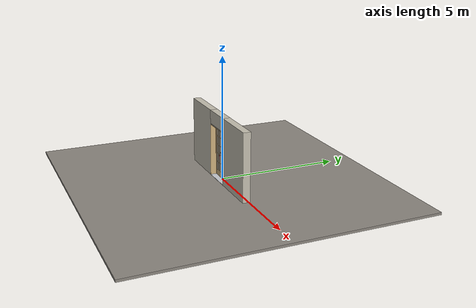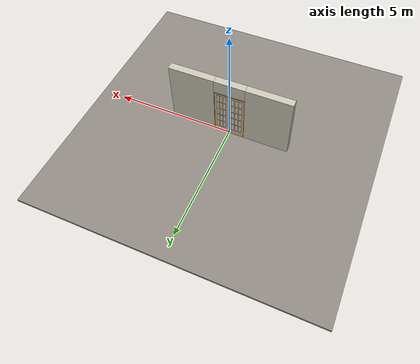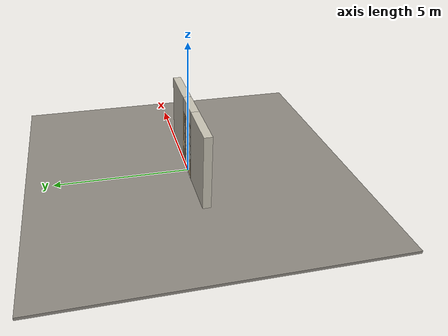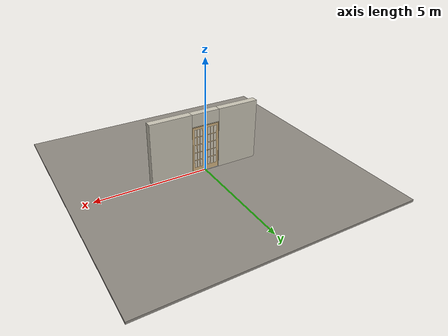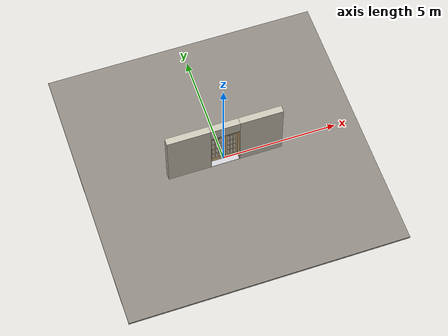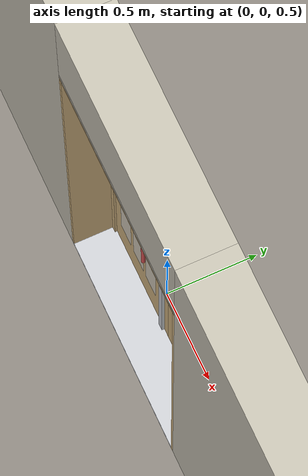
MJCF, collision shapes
<?xml version="1.0" ?>
<mujoco model="db0702_swing_double_full">
  <compiler angle="radian" meshdir="../../hardware" texturedir="../../textures" autolimits="true" inertiafromgeom="false"/>
  <option timestep="0.002" integrator="implicitfast" cone="elliptic" impratio="10" noslip_iterations="3">
    <flag multiccd="enable"/>
  </option>
  <size memory="16M"/>
  <default>
    <geom condim="4" solref="0.005 1" solimp="0.95 0.99 0.001"/>
    <joint solreflimit="0.005 1" solimplimit="0.95 0.99 0.001"/>
    <tendon solreflimit="0.005 1"/>
    <equality solref="0.002 1"/>
  </default>
  <visual>
    <headlight ambient="0.4 0.4 0.4" diffuse="0.7 0.7 0.7" specular="0.2 0.2 0.2"/>
    <quality shadowsize="4096"/>
    <map znear="0.01" zfar="60"/>
  </visual>
  <asset>
    <mesh name="cyl_face_e9e5036966" file="cyl_face_e9e5036966.obj"/>
    <mesh name="handleset_beb5526ad2" file="handleset_beb5526ad2.obj"/>
    <mesh name="hinge_2af0f4d6ca" file="hinge_2af0f4d6ca.obj"/>
    <mesh name="hinge_jamb_c0c0a62ada" file="hinge_jamb_c0c0a62ada.obj"/>
    <mesh name="knob_d1888f6f03" file="knob_d1888f6f03.obj"/>
    <material name="mat_floor" rgba="0.55 0.53 0.5 1" specular="0.2" shininess="0.15" reflectance="0"/>
    <material name="mat_wall" rgba="0.78 0.76 0.7 1" specular="0.2" shininess="0.1" reflectance="0"/>
    <material name="mat_leaf_a" rgba="0.82 0.7 0.5 1" specular="0.2" shininess="0.45" reflectance="0"/>
    <material name="mat_glass" rgba="0.9 0.93 0.95 0.6" specular="0.2" shininess="0.5" reflectance="0.1"/>
    <material name="mat_hinge" rgba="0.65 0.66 0.68 1" specular="0.74" shininess="0.5" reflectance="0.36"/>
    <material name="mat_op_bronze" rgba="0.3 0.22 0.15 1" specular="0.74" shininess="0.5" reflectance="0.36"/>
    <material name="mat_op_brass" rgba="0.85 0.66 0.3 1" specular="0.8" shininess="0.75" reflectance="0.4"/>
    <material name="mat_trim" rgba="0.85 0.66 0.3 1" specular="0.8" shininess="0.75" reflectance="0.4"/>
    <material name="mat_bolt" rgba="0.85 0.66 0.3 1" specular="0.8" shininess="0.75" reflectance="0.4"/>
    <material name="mat_deadbolt" rgba="0.85 0.66 0.3 1" specular="0.8" shininess="0.75" reflectance="0.4"/>
    <material name="mat_leaf_b" rgba="0.82 0.7 0.5 1" specular="0.2" shininess="0.45" reflectance="0"/>
    <material name="mat_frame" rgba="0.82 0.7 0.5 1" specular="0.2" shininess="0.45" reflectance="0"/>
    <material name="mat_threshold" rgba="0.8 0.81 0.83 1" specular="0.8" shininess="0.6" reflectance="0.4"/>
    <material name="mat_astragal" rgba="0.8 0.81 0.83 1" specular="0.8" shininess="0.6" reflectance="0.4"/>
    <texture name="skybox" type="skybox" builtin="gradient" rgb1="0.6 0.7 0.85" rgb2="0.9 0.92 0.95" width="256" height="256"/>
  </asset>
  <worldbody>
    <light name="sun" pos="1.5 -2.5 4" dir="-0.3 0.5 -0.8" directional="true" diffuse="0.8 0.8 0.8" specular="0.3 0.3 0.3" castshadow="true"/>
    <light name="fill" pos="-1.5 2.5 3" dir="0.3 -0.5 -0.7" directional="true" diffuse="0.35 0.35 0.4" castshadow="false"/>
    <camera name="robot_view" pos="0 -2.745812 1.812087" xyaxes="1 0 0 0 0.26963 0.962964" fovy="52"/>
    <camera name="far_view" pos="0 2.529812 1.812087" xyaxes="-1 0 0 0 -0.26963 0.962964" fovy="52"/>
    <camera name="iso" pos="-2.004737 -2.323762 2.234138" xyaxes="0.741536 -0.670913 0 0.242917 0.268487 0.932151" fovy="46"/>
    <camera name="detail_handle" pos="0.0735 -0.882 1.185" xyaxes="0.97561 0.219512 0 -0.070934 0.315262 0.94635" fovy="38"/>
    <geom name="floor" type="box" size="6 6 0.05" pos="0 0 -0.05" material="mat_floor" group="0" contype="1" conaffinity="1" friction="0.8 0.005 0.0001" density="2400"/>
    <geom name="wall_left" type="box" size="0.93325 0.15 1.3735" pos="-1.56675 -0.108 1.3735" material="mat_wall" group="0" contype="1" conaffinity="1" friction="0.6 0.005 0.0001" density="800"/>
    <geom name="wall_right" type="box" size="0.93325 0.15 1.3735" pos="1.56675 -0.108 1.3735" material="mat_wall" group="0" contype="1" conaffinity="1" friction="0.6 0.005 0.0001" density="800"/>
    <geom name="wall_header" type="box" size="0.6335 0.15 0.2755" pos="0 -0.108 2.4715" material="mat_wall" group="0" contype="1" conaffinity="1" friction="0.6 0.005 0.0001" density="800"/>
    <geom name="hinge_0_jamb" type="mesh" mesh="hinge_jamb_c0c0a62ada" pos="-0.6115 0.029 0.267" quat="0 1 0 0" material="mat_hinge" group="1" contype="0" conaffinity="0" density="7850"/>
    <geom name="hinge_1_jamb" type="mesh" mesh="hinge_jamb_c0c0a62ada" pos="-0.6115 0.029 1.08" quat="0 1 0 0" material="mat_hinge" group="1" contype="0" conaffinity="0" density="7850"/>
    <geom name="hinge_2_jamb" type="mesh" mesh="hinge_jamb_c0c0a62ada" pos="-0.6115 0.029 1.963" quat="0 1 0 0" material="mat_hinge" group="1" contype="0" conaffinity="0" density="7850"/>
    <geom name="hinge_0_jamb_2" type="mesh" mesh="hinge_jamb_c0c0a62ada" pos="0.6115 0.029 0.267" quat="0 0 0 1" material="mat_hinge" group="1" contype="0" conaffinity="0" density="7850"/>
    <geom name="hinge_1_jamb_2" type="mesh" mesh="hinge_jamb_c0c0a62ada" pos="0.6115 0.029 1.08" quat="0 0 0 1" material="mat_hinge" group="1" contype="0" conaffinity="0" density="7850"/>
    <geom name="hinge_2_jamb_2" type="mesh" mesh="hinge_jamb_c0c0a62ada" pos="0.6115 0.029 1.963" quat="0 0 0 1" material="mat_hinge" group="1" contype="0" conaffinity="0" density="7850"/>
    <geom name="jamb_l" type="box" size="0.0095 0.15 1.0735" pos="-0.624 -0.108 1.0735" material="mat_frame" group="0" contype="1" conaffinity="1" friction="0.6 0.005 0.0001" density="300"/>
    <geom name="jamb_r" type="box" size="0.0095 0.15 1.0735" pos="0.624 -0.108 1.0735" material="mat_frame" group="0" contype="1" conaffinity="1" friction="0.6 0.005 0.0001" density="300"/>
    <geom name="jamb_head" type="box" size="0.6335 0.15 0.0095" pos="0 -0.108 2.1565" material="mat_frame" group="0" contype="1" conaffinity="1" friction="0.6 0.005 0.0001" density="300"/>
    <geom name="head_stud" type="box" size="0.6335 0.15 0.015" pos="0 -0.108 2.181" material="mat_wall" group="0" contype="1" conaffinity="1" friction="0.6 0.005 0.0001" density="500"/>
    <geom name="stop_l" type="box" size="0.015 0.006 1.0735" pos="-0.5995 -0.0285 1.0735" material="mat_frame" group="0" contype="1" conaffinity="1" friction="0.6 0.005 0.0001" density="300"/>
    <geom name="stop_r" type="box" size="0.015 0.006 1.0735" pos="0.5995 -0.0285 1.0735" material="mat_frame" group="0" contype="1" conaffinity="1" friction="0.6 0.005 0.0001" density="300"/>
    <geom name="stop_head" type="box" size="0.6145 0.006 0.015" pos="0 -0.0285 2.132" material="mat_frame" group="0" contype="1" conaffinity="1" friction="0.6 0.005 0.0001" density="300"/>
    <geom name="threshold" type="box" size="0.6335 0.15 0.0065" pos="0 -0.108 0.0065" material="mat_threshold" group="0" contype="1" conaffinity="1" friction="0.5 0.005 0.0001" density="2700"/>
    <site name="approach_point" pos="0 -1.5 0" quat="1 0 0 0" size="0.05" rgba="0.2 0.9 0.2 0.5" group="4"/>
    <site name="goal_point" pos="0 1.5 0" quat="1 0 0 0" size="0.05" rgba="0.2 0.9 0.2 0.5" group="4"/>
    <site name="door_plane_center" pos="0 0 1.0735" quat="1 0 0 0" size="0.02" rgba="0.2 0.9 0.2 0.5" group="4"/>
    <site name="approach_point_2" pos="0 -1.5 0" quat="1 0 0 0" size="0.05" rgba="0.2 0.9 0.2 0.5" group="4"/>
    <site name="goal_point_2" pos="0 1.5 0" quat="1 0 0 0" size="0.05" rgba="0.2 0.9 0.2 0.5" group="4"/>
    <site name="door_plane_center_2" pos="0 0 1.0735" quat="1 0 0 0" size="0.02" rgba="0.2 0.9 0.2 0.5" group="4"/>
    <site name="approach_point_3" pos="0 -1.5 0" quat="1 0 0 0" size="0.05" rgba="0.2 0.9 0.2 0.5" group="4"/>
    <site name="goal_point_3" pos="0 1.5 0" quat="1 0 0 0" size="0.05" rgba="0.2 0.9 0.2 0.5" group="4"/>
    <site name="door_plane_center_3" pos="0 0 1.0735" quat="1 0 0 0" size="0.02" rgba="0.2 0.9 0.2 0.5" group="4"/>
    <body name="leaf_a" pos="-0.6145 0 0">
      <inertial pos="0.321329 -0.003282 1.068916" mass="23.587514" quat="0.504683 0.491321 -0.507793 0.49603" diaginertia="0.839727097 8.301690874 9.124581963"/>
      <joint name="leaf_a_hinge" type="hinge" axis="0 0 1" pos="0.003 0.029 0" limited="true" range="0 1.570796" solreflimit="0.02 1" damping="0.103362" frictionloss="0.764321" armature="0.02"/>
      <geom name="leaf_a_slab" type="box" size="0.305 0.022 1.063" pos="0.308 0 1.08" material="mat_leaf_a" group="0" contype="1" conaffinity="1" friction="0.35 0.005 0.0001" density="1"/>
      <geom name="leaf_a_glass_0" type="box" size="0.061667 0.0228 0.166584" pos="0.154667 0 0.417444" material="mat_glass" group="1" contype="0" conaffinity="0" density="1"/>
      <geom name="leaf_a_glass_1" type="box" size="0.061667 0.0228 0.166584" pos="0.308 0 0.417444" material="mat_glass" group="1" contype="0" conaffinity="0" density="1"/>
      <geom name="leaf_a_glass_2" type="box" size="0.061667 0.0228 0.166584" pos="0.461333 0 0.417444" material="mat_glass" group="1" contype="0" conaffinity="0" density="1"/>
      <geom name="leaf_a_glass_3" type="box" size="0.061667 0.0228 0.166584" pos="0.154667 0 0.780612" material="mat_glass" group="1" contype="0" conaffinity="0" density="1"/>
      <geom name="leaf_a_glass_4" type="box" size="0.061667 0.0228 0.166584" pos="0.308 0 0.780612" material="mat_glass" group="1" contype="0" conaffinity="0" density="1"/>
      <geom name="leaf_a_glass_5" type="box" size="0.061667 0.0228 0.166584" pos="0.461333 0 0.780612" material="mat_glass" group="1" contype="0" conaffinity="0" density="1"/>
      <geom name="leaf_a_glass_6" type="box" size="0.061667 0.0228 0.166584" pos="0.154667 0 1.14378" material="mat_glass" group="1" contype="0" conaffinity="0" density="1"/>
      <geom name="leaf_a_glass_7" type="box" size="0.061667 0.0228 0.166584" pos="0.308 0 1.14378" material="mat_glass" group="1" contype="0" conaffinity="0" density="1"/>
      <geom name="leaf_a_glass_8" type="box" size="0.061667 0.0228 0.166584" pos="0.461333 0 1.14378" material="mat_glass" group="1" contype="0" conaffinity="0" density="1"/>
      <geom name="leaf_a_glass_9" type="box" size="0.061667 0.0228 0.166584" pos="0.154667 0 1.506948" material="mat_glass" group="1" contype="0" conaffinity="0" density="1"/>
      <geom name="leaf_a_glass_10" type="box" size="0.061667 0.0228 0.166584" pos="0.308 0 1.506948" material="mat_glass" group="1" contype="0" conaffinity="0" density="1"/>
      <geom name="leaf_a_glass_11" type="box" size="0.061667 0.0228 0.166584" pos="0.461333 0 1.506948" material="mat_glass" group="1" contype="0" conaffinity="0" density="1"/>
      <geom name="leaf_a_glass_12" type="box" size="0.061667 0.0228 0.166584" pos="0.154667 0 1.870116" material="mat_glass" group="1" contype="0" conaffinity="0" density="1"/>
      <geom name="leaf_a_glass_13" type="box" size="0.061667 0.0228 0.166584" pos="0.308 0 1.870116" material="mat_glass" group="1" contype="0" conaffinity="0" density="1"/>
      <geom name="leaf_a_glass_14" type="box" size="0.061667 0.0228 0.166584" pos="0.461333 0 1.870116" material="mat_glass" group="1" contype="0" conaffinity="0" density="1"/>
      <geom name="hinge_0" type="mesh" mesh="hinge_2af0f4d6ca" pos="0.003 0.029 0.267" quat="0 1 0 0" material="mat_hinge" group="1" contype="0" conaffinity="0" density="7850"/>
      <geom name="hinge_1" type="mesh" mesh="hinge_2af0f4d6ca" pos="0.003 0.029 1.08" quat="0 1 0 0" material="mat_hinge" group="1" contype="0" conaffinity="0" density="7850"/>
      <geom name="hinge_2" type="mesh" mesh="hinge_2af0f4d6ca" pos="0.003 0.029 1.963" quat="0 1 0 0" material="mat_hinge" group="1" contype="0" conaffinity="0" density="7850"/>
      <geom name="leaf_a_handleset_n" type="mesh" mesh="handleset_beb5526ad2" pos="0.508 -0.022 0.905" quat="0.707107 0.707107 0 0" material="mat_op_bronze" group="1" contype="0" conaffinity="0" density="3000"/>
      <geom name="leaf_a_handleset_col_n" type="capsule" size="0.011 0.09" pos="0.508 -0.082 0.905" material="mat_op_bronze" group="3" contype="1" conaffinity="1" rgba="0.8 0.3 0.3 0.25" friction="0.7 0.01 0.0001" density="3000"/>
      <geom name="leaf_a_latch_bolt_faceplate" type="box" size="0.0006 0.01235 0.0267" pos="0.6124 0 0.965" material="mat_bolt" group="1" contype="0" conaffinity="0" density="8500"/>
      <geom name="leaf_a_deadbolt_faceplate" type="box" size="0.0006 0.014 0.0245" pos="0.6124 0 1.14" material="mat_deadbolt" group="1" contype="0" conaffinity="0" density="8500"/>
      <geom name="leaf_a_deadbolt_cylinder_face" type="mesh" mesh="cyl_face_e9e5036966" pos="0.548 -0.022 1.14" quat="0.707107 0.707107 0 0" material="mat_deadbolt" group="1" contype="0" conaffinity="0" density="7100"/>
      <geom name="leaf_a_multipoint_upper_faceplate" type="box" size="0.0006 0.014 0.0245" pos="0.6124 0 1.64" material="mat_deadbolt" group="1" contype="0" conaffinity="0" density="8500"/>
      <geom name="leaf_a_multipoint_lower_faceplate" type="box" size="0.0006 0.014 0.0245" pos="0.6124 0 0.59" material="mat_deadbolt" group="1" contype="0" conaffinity="0" density="8500"/>
      <geom name="leaf_a_multipoint_strip" type="box" size="0.0004 0.01 1.043" pos="0.6126 0 1.08" material="mat_deadbolt" group="1" contype="0" conaffinity="0" density="8500"/>
      <site name="leaf_a_handleset_grip_n" pos="0.508 -0.082 0.905" quat="1 0 0 0" size="0.012" rgba="0.2 0.9 0.2 0.5" group="4"/>
      <site name="leaf_a_edge_mid" pos="0.613 0 1.063" quat="1 0 0 0" size="0.02" rgba="0.2 0.9 0.2 0.5" group="4"/>
      <body name="leaf_a_handle" pos="0.543 0 0.965">
        <inertial pos="0 0.052948 0" mass="0.60261" quat="0.5 0.5 0.5 0.5" diaginertia="0.000156736 0.000451151 0.000451151"/>
        <joint name="leaf_a_handle_hinge" type="hinge" axis="0 -1 0" limited="true" range="0 0.03" damping="0.142525" frictionloss="0.038" stiffness="0.5" springref="-0.5" armature="0.01"/>
        <geom name="leaf_a_handle_spindle" type="cylinder" size="0.006 0.03" pos="0 0 0" quat="0.707107 -0.707107 0 0" material="mat_op_brass" group="1" contype="0" conaffinity="0" density="7850"/>
        <geom name="leaf_a_handle_knob_p" type="mesh" mesh="knob_d1888f6f03" pos="0 0.022 0" quat="-0.707107 0.707107 0 0" material="mat_op_brass" group="1" contype="0" conaffinity="0" density="3000"/>
        <geom name="leaf_a_handle_knob_col_p" type="sphere" size="0.0243" pos="0 0.0685 0" material="mat_op_brass" group="0" contype="1" conaffinity="1" friction="0.9 0.01 0.0001" density="3000"/>
        <geom name="leaf_a_handle_knob_neck_p" type="cylinder" size="0.011 0.012" pos="0 0.034 0" quat="0.707107 -0.707107 0 0" material="mat_op_brass" group="3" contype="1" conaffinity="1" rgba="0.8 0.3 0.3 0.25" friction="0.6 0.005 0.0001" density="3000"/>
        <site name="leaf_a_handle_grip_p" pos="0 0.0685 0" quat="1 0 0 0" size="0.012" rgba="0.2 0.9 0.2 0.5" group="4"/>
      </body>
      <body name="leaf_a_thumbpiece" pos="0.508 -0.04 1.077">
        <inertial pos="0 0.004 0" mass="0.05184" quat="-0.5 0.5 0.5 0.5" diaginertia="0.000006981 0.000007488 0.000009124"/>
        <joint name="leaf_a_thumbpiece_hinge" type="hinge" axis="-1 0 0" pos="0 0 0.02" limited="true" range="0 0.35" damping="0.219407" frictionloss="0.058" stiffness="1.2" springref="-0.416667" armature="0.01"/>
        <geom name="leaf_a_thumbpiece_geom" type="box" size="0.018 0.004 0.02" pos="0 0 0" material="mat_op_bronze" group="0" contype="1" conaffinity="1" friction="0.6 0.005 0.0001" density="3000"/>
        <geom name="leaf_a_thumbpiece_boss" type="box" size="0.01 0.012 0.006" pos="0 0.012 0" material="mat_op_bronze" group="1" contype="0" conaffinity="0" density="3000"/>
        <site name="leaf_a_thumb_push" pos="0 -0.005 0.01" quat="1 0 0 0" size="0.01" rgba="0.2 0.9 0.2 0.5" group="4"/>
      </body>
      <body name="leaf_a_latch_bolt" pos="0.613 0 0.965">
        <inertial pos="-0.00865 0 0" mass="0.041419" quat="0.92388 -0.382683 0 0" diaginertia="0.000000798 0.000005598 0.000005598"/>
        <joint name="leaf_a_latch_bolt_slide" type="slide" axis="-1 0 0" limited="true" range="0 0.0127" damping="2" frictionloss="0.3" stiffness="300" springref="-0.008333" armature="0.1"/>
        <geom name="leaf_a_latch_bolt_capsule" type="capsule" size="0.00635 0.015" pos="-0.00865 0 0" quat="0.707107 0 0.707107 0" material="mat_bolt" group="0" contype="1" conaffinity="1" friction="0.2 0.005 0.0001" density="8500"/>
      </body>
      <body name="leaf_a_deadbolt" pos="0.613 0 1.14">
        <inertial pos="-0.005 0 0" mass="0.17" quat="0 0 0.707107 0.707107" diaginertia="0.000012481 0.000039043 0.000044271"/>
        <geom name="leaf_a_deadbolt_box" type="box" size="0.025 0.008 0.0125" pos="-0.005 0 0" material="mat_deadbolt" group="0" contype="1" conaffinity="1" friction="0.3 0.005 0.0001" density="8500"/>
      </body>
      <body name="leaf_a_multipoint_upper" pos="0.613 0 1.64">
        <inertial pos="-0.005 0 0" mass="0.17" quat="0 0 0.707107 0.707107" diaginertia="0.000012481 0.000039043 0.000044271"/>
        <geom name="leaf_a_multipoint_upper_box" type="box" size="0.025 0.008 0.0125" pos="-0.005 0 0" material="mat_deadbolt" group="0" contype="1" conaffinity="1" friction="0.3 0.005 0.0001" density="8500"/>
      </body>
      <body name="leaf_a_multipoint_lower" pos="0.613 0 0.59">
        <inertial pos="-0.005 0 0" mass="0.17" quat="0 0 0.707107 0.707107" diaginertia="0.000012481 0.000039043 0.000044271"/>
        <geom name="leaf_a_multipoint_lower_box" type="box" size="0.025 0.008 0.0125" pos="-0.005 0 0" material="mat_deadbolt" group="0" contype="1" conaffinity="1" friction="0.3 0.005 0.0001" density="8500"/>
      </body>
    </body>
    <body name="leaf_b" pos="0.6145 0 0">
      <inertial pos="-0.346254 -0.006286 1.077845" mass="22.599859" quat="0.488916 0.512342 -0.487297 0.51089" diaginertia="0.959766359 8.525058372 9.475381376"/>
      <joint name="leaf_b_hinge" type="hinge" axis="0 0 -1" pos="-0.003 0.029 0" limited="true" range="0 0.001" solreflimit="0.02 1" damping="0.103362" frictionloss="0.764321" armature="0.02"/>
      <geom name="leaf_b_edge_590_wall_n" type="box" size="0.03 0.00625 0.0155" pos="-0.583 -0.01575 0.59" material="mat_leaf_b" group="0" contype="1" conaffinity="1" friction="0.6 0.005 0.0001" density="1"/>
      <geom name="leaf_b_edge_590_wall_p" type="box" size="0.03 0.00625 0.0155" pos="-0.583 0.01575 0.59" material="mat_leaf_b" group="0" contype="1" conaffinity="1" friction="0.6 0.005 0.0001" density="1"/>
      <geom name="leaf_b_edge_590_back" type="box" size="0.018 0.0095 0.0155" pos="-0.571 0 0.59" material="mat_leaf_b" group="0" contype="1" conaffinity="1" friction="0.6 0.005 0.0001" density="1"/>
      <geom name="leaf_b_edge_965_wall_n" type="box" size="0.03 0.007075 0.0167" pos="-0.583 -0.014925 0.965" material="mat_leaf_b" group="0" contype="1" conaffinity="1" friction="0.6 0.005 0.0001" density="1"/>
      <geom name="leaf_b_edge_965_wall_p" type="box" size="0.03 0.008 0.0167" pos="-0.583 0.01585 0.965" material="mat_leaf_b" group="0" contype="1" conaffinity="1" friction="0.6 0.005 0.0001" density="1"/>
      <geom name="leaf_b_edge_965_ramp" type="box" size="0.03 0.01649 0.0167" pos="-0.578861 0.026388 0.965" quat="0.977148 0 0 -0.212558" material="mat_leaf_b" group="0" contype="1" conaffinity="1" friction="0.12 0.005 0.0001" density="1"/>
      <geom name="leaf_b_edge_965_back" type="box" size="0.02165 0.00785 0.0167" pos="-0.57465 0 0.965" material="mat_leaf_b" group="0" contype="1" conaffinity="1" friction="0.6 0.005 0.0001" density="1"/>
      <geom name="leaf_b_edge_1140_wall_n" type="box" size="0.03 0.00625 0.0155" pos="-0.583 -0.01575 1.14" material="mat_leaf_b" group="0" contype="1" conaffinity="1" friction="0.6 0.005 0.0001" density="1"/>
      <geom name="leaf_b_edge_1140_wall_p" type="box" size="0.03 0.00625 0.0155" pos="-0.583 0.01575 1.14" material="mat_leaf_b" group="0" contype="1" conaffinity="1" friction="0.6 0.005 0.0001" density="1"/>
      <geom name="leaf_b_edge_1140_back" type="box" size="0.018 0.0095 0.0155" pos="-0.571 0 1.14" material="mat_leaf_b" group="0" contype="1" conaffinity="1" friction="0.6 0.005 0.0001" density="1"/>
      <geom name="leaf_b_edge_1640_wall_n" type="box" size="0.03 0.00625 0.0155" pos="-0.583 -0.01575 1.64" material="mat_leaf_b" group="0" contype="1" conaffinity="1" friction="0.6 0.005 0.0001" density="1"/>
      <geom name="leaf_b_edge_1640_wall_p" type="box" size="0.03 0.00625 0.0155" pos="-0.583 0.01575 1.64" material="mat_leaf_b" group="0" contype="1" conaffinity="1" friction="0.6 0.005 0.0001" density="1"/>
      <geom name="leaf_b_edge_1640_back" type="box" size="0.018 0.0095 0.0155" pos="-0.571 0 1.64" material="mat_leaf_b" group="0" contype="1" conaffinity="1" friction="0.6 0.005 0.0001" density="1"/>
      <geom name="leaf_b_edge_seg_0" type="box" size="0.03 0.022 0.27875" pos="-0.583 0 0.29575" material="mat_leaf_b" group="0" contype="1" conaffinity="1" friction="0.6 0.005 0.0001" density="1"/>
      <geom name="leaf_b_edge_seg_1" type="box" size="0.03 0.022 0.1714" pos="-0.583 0 0.7769" material="mat_leaf_b" group="0" contype="1" conaffinity="1" friction="0.6 0.005 0.0001" density="1"/>
      <geom name="leaf_b_edge_seg_2" type="box" size="0.03 0.022 0.0714" pos="-0.583 0 1.0531" material="mat_leaf_b" group="0" contype="1" conaffinity="1" friction="0.6 0.005 0.0001" density="1"/>
      <geom name="leaf_b_edge_seg_3" type="box" size="0.03 0.022 0.2345" pos="-0.583 0 1.39" material="mat_leaf_b" group="0" contype="1" conaffinity="1" friction="0.6 0.005 0.0001" density="1"/>
      <geom name="leaf_b_edge_seg_4" type="box" size="0.03 0.022 0.24375" pos="-0.583 0 1.89925" material="mat_leaf_b" group="0" contype="1" conaffinity="1" friction="0.6 0.005 0.0001" density="1"/>
      <geom name="leaf_b_slab" type="box" size="0.275 0.022 1.063" pos="-0.278 0 1.08" material="mat_leaf_b" group="0" contype="1" conaffinity="1" friction="0.35 0.005 0.0001" density="1"/>
      <geom name="leaf_b_glass_0" type="box" size="0.051667 0.0228 0.166584" pos="-0.144667 0 0.417444" material="mat_glass" group="1" contype="0" conaffinity="0" density="1"/>
      <geom name="leaf_b_glass_1" type="box" size="0.051667 0.0228 0.166584" pos="-0.278 0 0.417444" material="mat_glass" group="1" contype="0" conaffinity="0" density="1"/>
      <geom name="leaf_b_glass_2" type="box" size="0.051667 0.0228 0.166584" pos="-0.411333 0 0.417444" material="mat_glass" group="1" contype="0" conaffinity="0" density="1"/>
      <geom name="leaf_b_glass_3" type="box" size="0.051667 0.0228 0.166584" pos="-0.144667 0 0.780612" material="mat_glass" group="1" contype="0" conaffinity="0" density="1"/>
      <geom name="leaf_b_glass_4" type="box" size="0.051667 0.0228 0.166584" pos="-0.278 0 0.780612" material="mat_glass" group="1" contype="0" conaffinity="0" density="1"/>
      <geom name="leaf_b_glass_5" type="box" size="0.051667 0.0228 0.166584" pos="-0.411333 0 0.780612" material="mat_glass" group="1" contype="0" conaffinity="0" density="1"/>
      <geom name="leaf_b_glass_6" type="box" size="0.051667 0.0228 0.166584" pos="-0.144667 0 1.14378" material="mat_glass" group="1" contype="0" conaffinity="0" density="1"/>
      <geom name="leaf_b_glass_7" type="box" size="0.051667 0.0228 0.166584" pos="-0.278 0 1.14378" material="mat_glass" group="1" contype="0" conaffinity="0" density="1"/>
      <geom name="leaf_b_glass_8" type="box" size="0.051667 0.0228 0.166584" pos="-0.411333 0 1.14378" material="mat_glass" group="1" contype="0" conaffinity="0" density="1"/>
      <geom name="leaf_b_glass_9" type="box" size="0.051667 0.0228 0.166584" pos="-0.144667 0 1.506948" material="mat_glass" group="1" contype="0" conaffinity="0" density="1"/>
      <geom name="leaf_b_glass_10" type="box" size="0.051667 0.0228 0.166584" pos="-0.278 0 1.506948" material="mat_glass" group="1" contype="0" conaffinity="0" density="1"/>
      <geom name="leaf_b_glass_11" type="box" size="0.051667 0.0228 0.166584" pos="-0.411333 0 1.506948" material="mat_glass" group="1" contype="0" conaffinity="0" density="1"/>
      <geom name="leaf_b_glass_12" type="box" size="0.051667 0.0228 0.166584" pos="-0.144667 0 1.870116" material="mat_glass" group="1" contype="0" conaffinity="0" density="1"/>
      <geom name="leaf_b_glass_13" type="box" size="0.051667 0.0228 0.166584" pos="-0.278 0 1.870116" material="mat_glass" group="1" contype="0" conaffinity="0" density="1"/>
      <geom name="leaf_b_glass_14" type="box" size="0.051667 0.0228 0.166584" pos="-0.411333 0 1.870116" material="mat_glass" group="1" contype="0" conaffinity="0" density="1"/>
      <geom name="hinge_0_2" type="mesh" mesh="hinge_2af0f4d6ca" pos="-0.003 0.029 0.267" quat="0 0 0 1" material="mat_hinge" group="1" contype="0" conaffinity="0" density="7850"/>
      <geom name="hinge_1_2" type="mesh" mesh="hinge_2af0f4d6ca" pos="-0.003 0.029 1.08" quat="0 0 0 1" material="mat_hinge" group="1" contype="0" conaffinity="0" density="7850"/>
      <geom name="hinge_2_2" type="mesh" mesh="hinge_2af0f4d6ca" pos="-0.003 0.029 1.963" quat="0 0 0 1" material="mat_hinge" group="1" contype="0" conaffinity="0" density="7850"/>
      <geom name="astragal" type="box" size="0.02 0.008 1.047" pos="-0.617 -0.03 1.067" material="mat_astragal" group="0" contype="1" conaffinity="1" friction="0.6 0.005 0.0001" density="2700"/>
      <site name="leaf_b_edge_mid" pos="-0.613 0 1.063" quat="1 0 0 0" size="0.02" rgba="0.2 0.9 0.2 0.5" group="4"/>
    </body>
  </worldbody>
  <tendon>
    <fixed name="leaf_a_thumb_coupling" limited="true" range="0 10">
      <joint joint="leaf_a_latch_bolt_slide" coef="1"/>
      <joint joint="leaf_a_thumbpiece_hinge" coef="-0.039688"/>
    </fixed>
    <fixed name="leaf_a_latch_bolt_coupling" limited="true" range="0 10">
      <joint joint="leaf_a_latch_bolt_slide" coef="1"/>
      <joint joint="leaf_a_handle_hinge" coef="-0.015679"/>
    </fixed>
  </tendon>
  <sensor>
    <jointpos name="leaf_a_hinge_pos" joint="leaf_a_hinge"/>
    <jointvel name="leaf_a_hinge_vel" joint="leaf_a_hinge"/>
    <jointpos name="leaf_a_handle_hinge_pos" joint="leaf_a_handle_hinge"/>
    <jointvel name="leaf_a_handle_hinge_vel" joint="leaf_a_handle_hinge"/>
    <jointpos name="leaf_a_thumbpiece_hinge_pos" joint="leaf_a_thumbpiece_hinge"/>
    <jointvel name="leaf_a_thumbpiece_hinge_vel" joint="leaf_a_thumbpiece_hinge"/>
    <jointpos name="leaf_a_latch_bolt_slide_pos" joint="leaf_a_latch_bolt_slide"/>
    <jointvel name="leaf_a_latch_bolt_slide_vel" joint="leaf_a_latch_bolt_slide"/>
    <jointpos name="leaf_b_hinge_pos" joint="leaf_b_hinge"/>
    <jointvel name="leaf_b_hinge_vel" joint="leaf_b_hinge"/>
  </sensor>
</mujoco>
